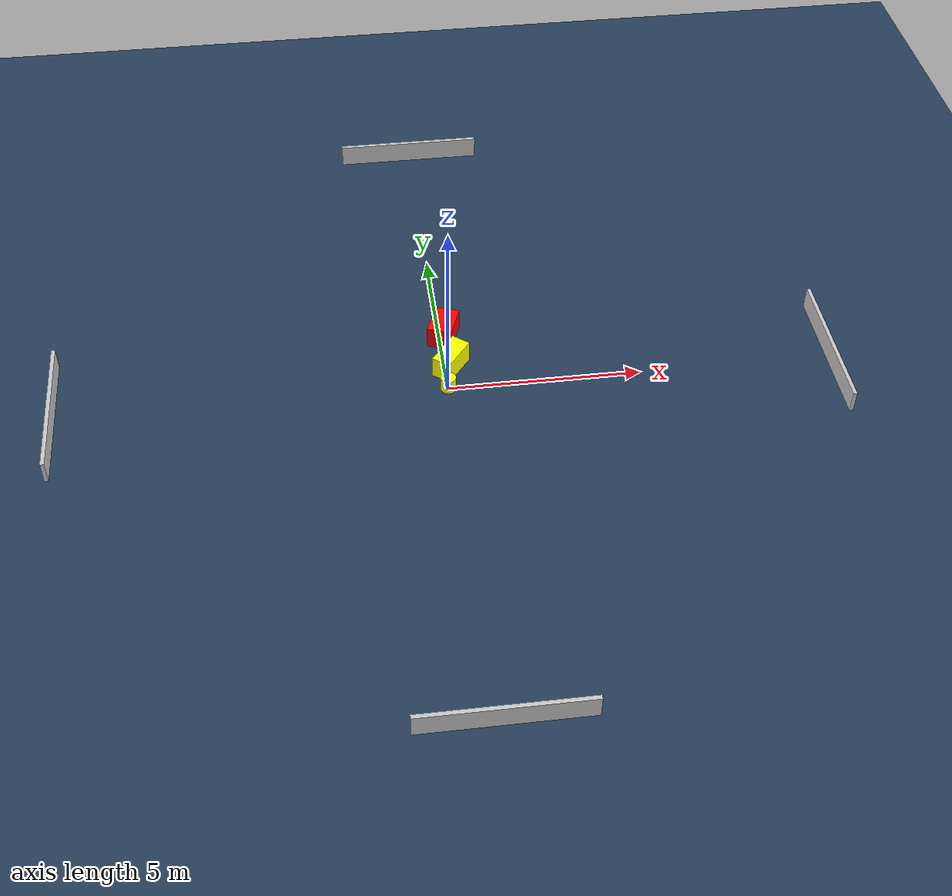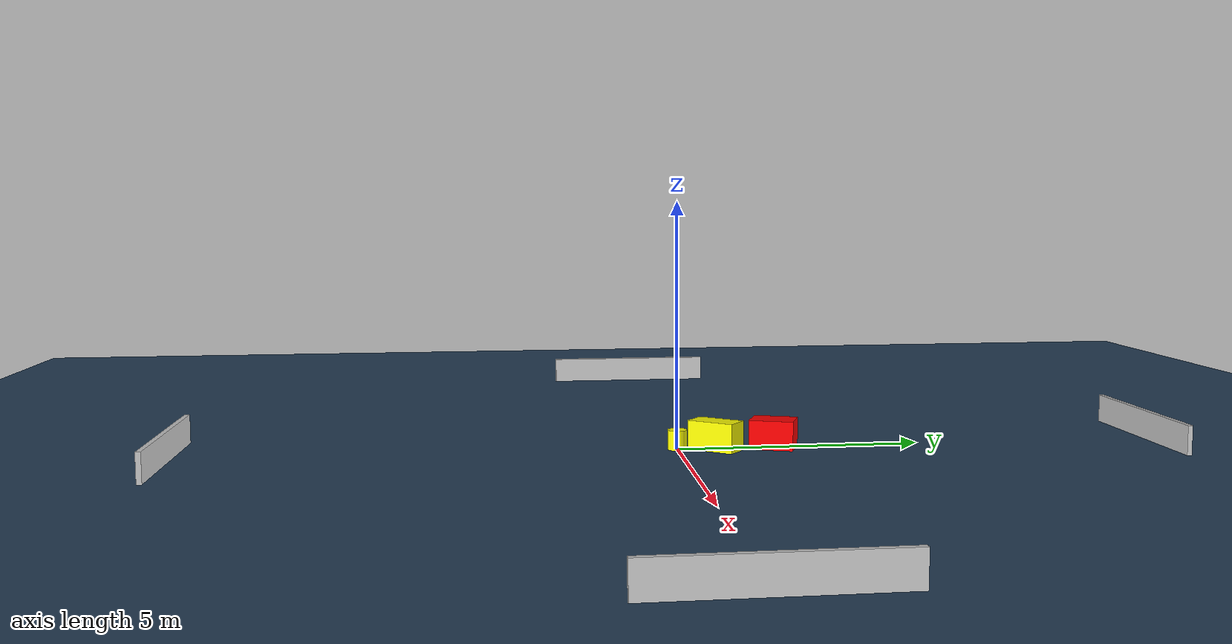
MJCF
<?xml version="1.0" ?>
<mujoco model="generated_environment">
  <option timestep="0.01" integrator="RK4" cone="elliptic"/>
  <default>
    <geom density="1"/>
  </default>
  <asset>
    <texture builtin="gradient" height="3072" name="skybox" rgb1="0.3 0.5 0.7" rgb2="0 0 0" type="skybox" width="512"/>
    <texture builtin="checker" height="300" name="groundplane" rgb1="0.2 0.3 0.4" rgb2="0.1 0.2 0.3" type="2d" width="300"/>
    <material name="groundplane" reflectance="0.2" texrepeat="5 5" texture="groundplane"/>
  </asset>
  <worldbody>
    <light dir="0 0 -1" directional="true" pos="0 0 1.5"/>
    <geom condim="3" friction="0.5 0.005 0.001" material="groundplane" name="floor" pos="0 0 0" size="0 0 0.05" type="plane"/>
    <body name="walls">
      <geom name="wall_1" condim="4" pos="-10.0 0.0 0.3" rgba="0.800000011920929 0.800000011920929 0.800000011920929 1.0" size="0.05 2.0 0.3" type="box"/>
      <geom name="wall_2" condim="4" pos="10.0 0.0 0.3" rgba="0.800000011920929 0.800000011920929 0.800000011920929 1.0" size="0.05 2.0 0.3" type="box"/>
      <geom name="wall_3" condim="4" pos="0.0 -10.0 0.3" rgba="0.800000011920929 0.800000011920929 0.800000011920929 1.0" size="2.0 0.05 0.3" type="box"/>
      <geom name="wall_4" condim="4" pos="0.0 10.0 0.3" rgba="0.800000011920929 0.800000011920929 0.800000011920929 1.0" size="2.0 0.05 0.3" type="box"/>
    </body>
    <body name="robot">
      <joint name="joint_x" type="slide" pos="0 0 0" axis="1 0 0"/>
      <joint name="joint_y" type="slide" pos="0 0 0" axis="0 1 0"/>
      <geom name="robot" type="cylinder" pos="0.0 0.0 0.2" size="0.2 0.2 0.0" mass="5.0" friction="1.0 0.005 0.0001" condim="4" rgba="1.0 1.0 0.0 1.0"/>
    </body>
    <body name="obstacle_1_movable">
      <geom name="obstacle_1_movable" condim="4" pos="0.1633238926372733 0.7642143959602211 0.3" euler="0 0 321.8468674475541" friction="0.0 0.005 0.001" rgba="1.0 1.0 0.0 1.0" size="0.2544149599123786 0.502827493796717 0.3" type="box" mass="0.1"/>
      <joint type="free"/>
    </body>
    <body name="obstacle_2_static">
      <geom name="obstacle_2_static" condim="4" pos="0.10265382832136362 1.964492037105821 0.3" euler="0 0 249.1588080588589" friction="0.0 0.005 0.001" rgba="1.0 0.0 0.0 1.0" size="0.4510524161537235 0.3234866293720069 0.3" type="box"/>
    </body>
  </worldbody>
  <actuator>
    <motor name="actuator_x" joint="joint_x" gear="1" ctrlrange="-1 1"/>
    <motor name="actuator_y" joint="joint_y" gear="1" ctrlrange="-1 1"/>
  </actuator>
</mujoco>
